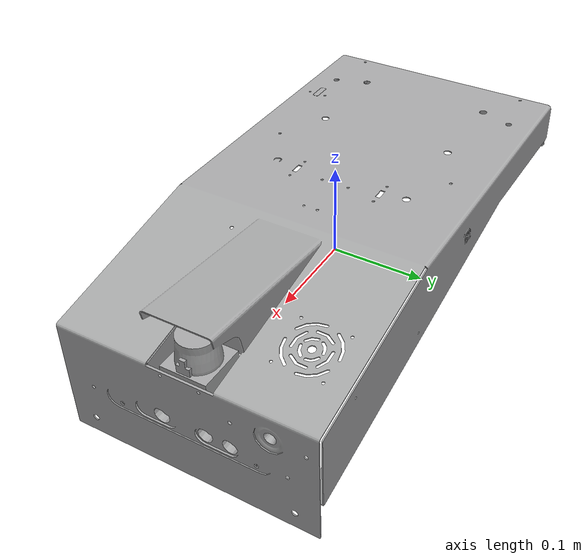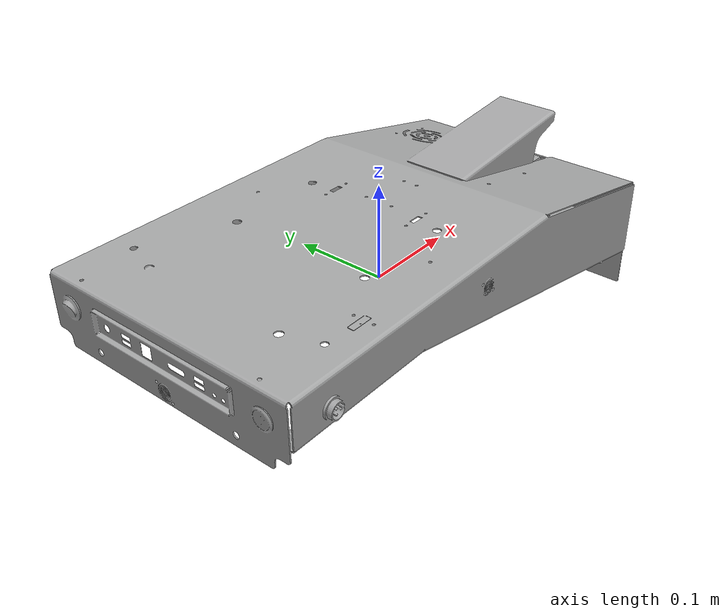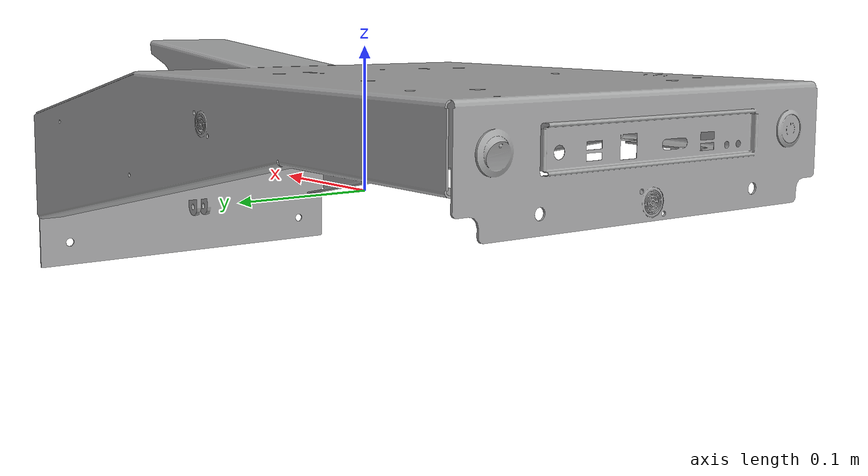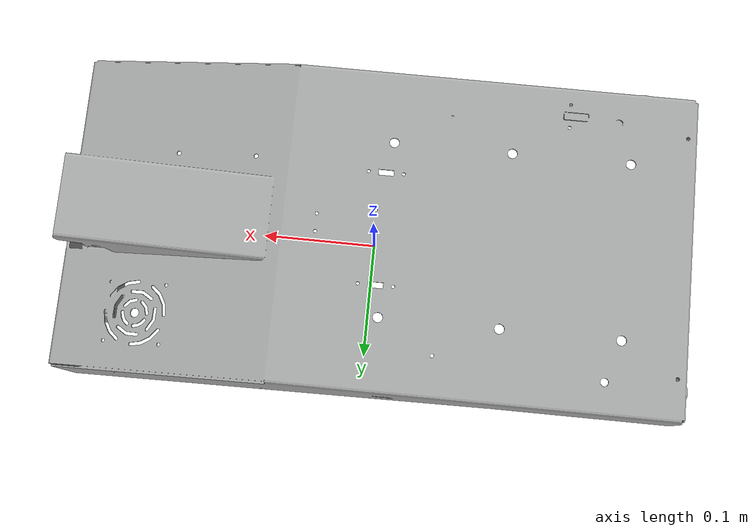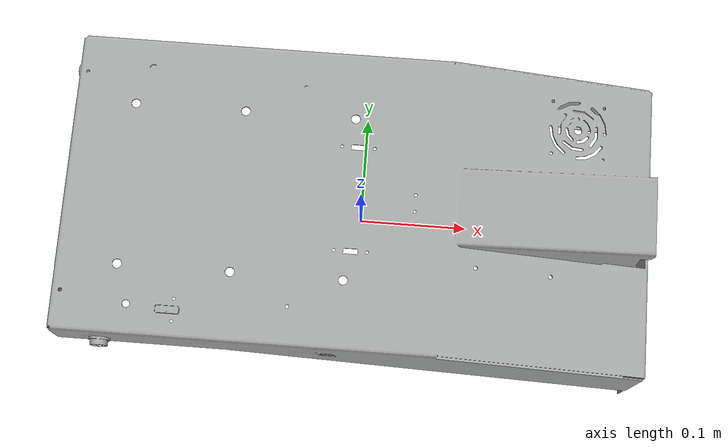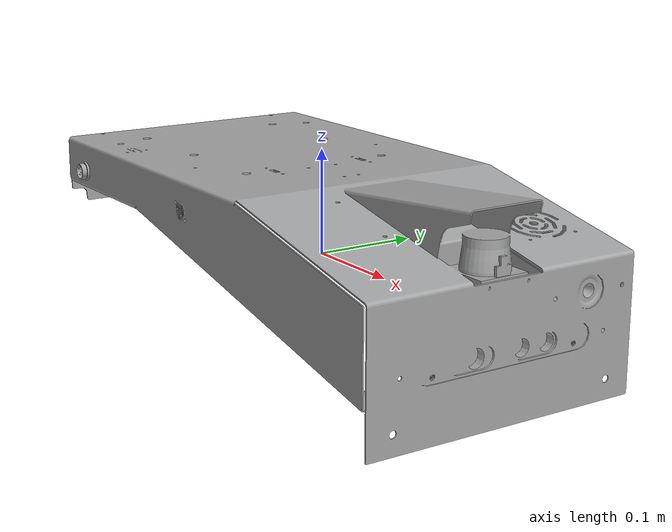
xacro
<robot name="sensors_unit_link"><link name="sensors_unit_link">
    <inertial>
      <origin rpy="0 0 0" xyz="0.0414414719218708 -0.000373289194023478 0.0507806551833217" />
      <mass value="3.00493541386534" />
      <inertia ixx="0.0317419196615914" ixy="-0.000328957251382255" ixz="-0.0101477531293138" iyy="0.0944166881470797" iyz="2.04069229359132E-05" izz="0.116969738863327" />
    </inertial>
    <visual>
      <origin rpy="0 0 0" xyz="0 0 0" />
      <geometry>
        <mesh filename="package://ric_description/komodo/meshes/sensors_unit_link.STL" />
      </geometry>
      <material name="">
        <color rgba="0.6509803921568627 0.6537254901960784 0.656078431372549 1" />
      </material>
    </visual>
    <collision>
      <origin rpy="0 0 0" xyz="0 0 0" />
      <geometry>
        <mesh filename="package://ric_description/komodo/meshes/sensors_unit_link.STL" />
      </geometry>
    </collision>
  </link>
  </robot>
